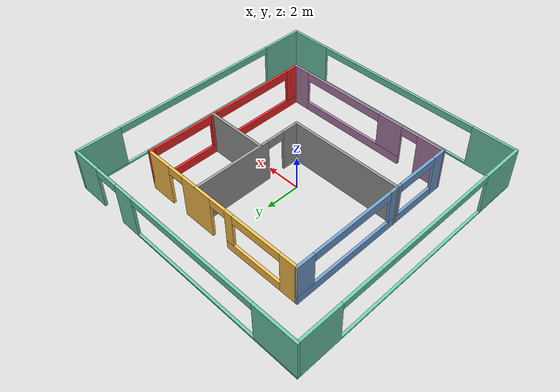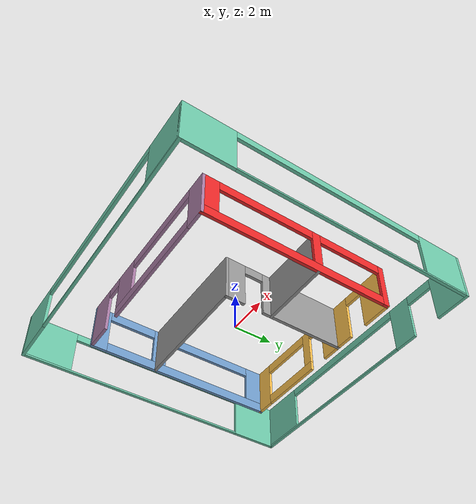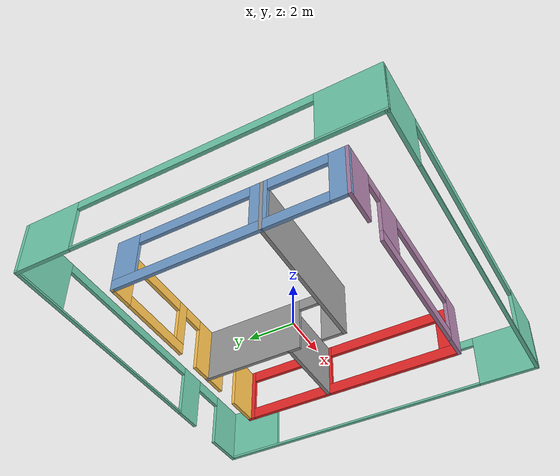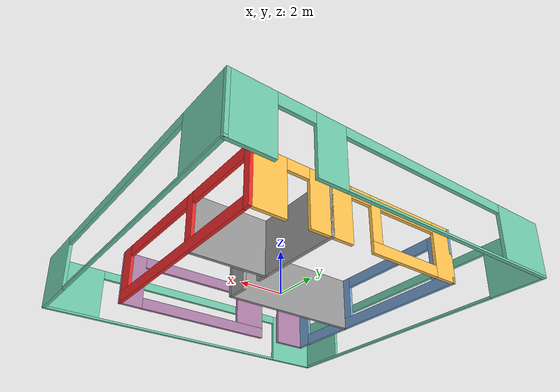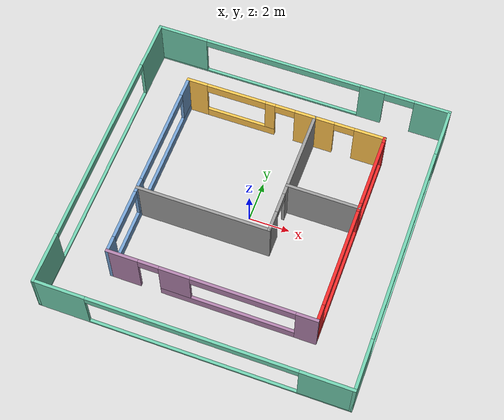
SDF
<!--building/model.sdf-->
<?xml version='1.0'?>
<sdf version='1.6'>
  <model name='building'>
    <pose frame=''>0 0 0 0 -0 0</pose>
    <link name='Wall_11'>
      <pose frame=''>0 5 0 0 -0 0</pose>
      <visual name='Wall_11_Visual_0'>
        <pose frame=''>-4.5375 0 1.25 0 -0 0</pose>
        <geometry>
          <box>
            <size>1.075 0.15 2.5</size>
          </box>
        </geometry>
        <material>
          <script>
            <uri>file://media/materials/scripts/gazebo.material</uri>
            <name>Gazebo/Grey</name>
          </script>
          <ambient>1 0.764706 0.305882 1</ambient>
        </material>
        <meta>
          <layer>0</layer>
        </meta>
      </visual>
      <collision name='Wall_11_Collision_0'>
        <geometry>
          <box>
            <size>1.075 0.15 2.5</size>
          </box>
        </geometry>
        <pose frame=''>-4.5375 0 1.25 0 -0 0</pose>
      </collision>
      <visual name='Wall_11_Visual_1'>
        <pose frame=''>1.5 0 1.25 0 -0 0</pose>
        <geometry>
          <box>
            <size>2 0.15 2.5</size>
          </box>
        </geometry>
        <material>
          <script>
            <uri>file://media/materials/scripts/gazebo.material</uri>
            <name>Gazebo/Grey</name>
          </script>
          <ambient>1 0.764706 0.305882 1</ambient>
        </material>
        <meta>
          <layer>0</layer>
        </meta>
      </visual>
      <collision name='Wall_11_Collision_1'>
        <geometry>
          <box>
            <size>2 0.15 2.5</size>
          </box>
        </geometry>
        <pose frame=''>1.5 0 1.25 0 -0 0</pose>
      </collision>
      <visual name='Wall_11_Visual_2'>
        <pose frame=''>4.2875 0 1.25 0 -0 0</pose>
        <geometry>
          <box>
            <size>1.575 0.15 2.5</size>
          </box>
        </geometry>
        <material>
          <script>
            <uri>file://media/materials/scripts/gazebo.material</uri>
            <name>Gazebo/Grey</name>
          </script>
          <ambient>1 0.764706 0.305882 1</ambient>
        </material>
        <meta>
          <layer>0</layer>
        </meta>
      </visual>
      <collision name='Wall_11_Collision_2'>
        <geometry>
          <box>
            <size>1.575 0.15 2.5</size>
          </box>
        </geometry>
        <pose frame=''>4.2875 0 1.25 0 -0 0</pose>
      </collision>
      <visual name='Wall_11_Visual_3'>
        <pose frame=''>-2.25 0 0.25 0 -0 0</pose>
        <geometry>
          <box>
            <size>3.5 0.15 0.5</size>
          </box>
        </geometry>
        <material>
          <script>
            <uri>file://media/materials/scripts/gazebo.material</uri>
            <name>Gazebo/Grey</name>
          </script>
          <ambient>1 0.764706 0.305882 1</ambient>
        </material>
        <meta>
          <layer>0</layer>
        </meta>
      </visual>
      <collision name='Wall_11_Collision_3'>
        <geometry>
          <box>
            <size>3.5 0.15 0.5</size>
          </box>
        </geometry>
        <pose frame=''>-2.25 0 0.25 0 -0 0</pose>
      </collision>
      <visual name='Wall_11_Visual_4'>
        <pose frame=''>-0.75 0 1.5 0 -0 0</pose>
        <geometry>
          <box>
            <size>0.5 0.15 2</size>
          </box>
        </geometry>
        <material>
          <script>
            <uri>file://media/materials/scripts/gazebo.material</uri>
            <name>Gazebo/Grey</name>
          </script>
          <ambient>1 0.764706 0.305882 1</ambient>
        </material>
        <meta>
          <layer>0</layer>
        </meta>
      </visual>
      <collision name='Wall_11_Collision_4'>
        <geometry>
          <box>
            <size>0.5 0.15 2</size>
          </box>
        </geometry>
        <pose frame=''>-0.75 0 1.5 0 -0 0</pose>
      </collision>
      <visual name='Wall_11_Visual_5'>
        <pose frame=''>-2.5 0 2.25 0 -0 0</pose>
        <geometry>
          <box>
            <size>3 0.15 0.5</size>
          </box>
        </geometry>
        <material>
          <script>
            <uri>file://media/materials/scripts/gazebo.material</uri>
            <name>Gazebo/Grey</name>
          </script>
          <ambient>1 0.764706 0.305882 1</ambient>
        </material>
        <meta>
          <layer>0</layer>
        </meta>
      </visual>
      <collision name='Wall_11_Collision_5'>
        <geometry>
          <box>
            <size>3 0.15 0.5</size>
          </box>
        </geometry>
        <pose frame=''>-2.5 0 2.25 0 -0 0</pose>
      </collision>
      <visual name='Wall_11_Visual_6'>
        <pose frame=''>3 0 2.25 0 -0 0</pose>
        <geometry>
          <box>
            <size>1 0.15 0.5</size>
          </box>
        </geometry>
        <material>
          <script>
            <uri>file://media/materials/scripts/gazebo.material</uri>
            <name>Gazebo/Grey</name>
          </script>
          <ambient>1 0.764706 0.305882 1</ambient>
        </material>
        <meta>
          <layer>0</layer>
        </meta>
      </visual>
      <collision name='Wall_11_Collision_6'>
        <geometry>
          <box>
            <size>1 0.15 0.5</size>
          </box>
        </geometry>
        <pose frame=''>3 0 2.25 0 -0 0</pose>
      </collision>
      <visual name='Wall_11_Visual_7'>
        <pose frame=''>0 0 2.25 0 -0 0</pose>
        <geometry>
          <box>
            <size>1 0.15 0.5</size>
          </box>
        </geometry>
        <material>
          <script>
            <uri>file://media/materials/scripts/gazebo.material</uri>
            <name>Gazebo/Grey</name>
          </script>
          <ambient>1 0.764706 0.305882 1</ambient>
        </material>
        <meta>
          <layer>0</layer>
        </meta>
      </visual>
      <collision name='Wall_11_Collision_7'>
        <geometry>
          <box>
            <size>1 0.15 0.5</size>
          </box>
        </geometry>
        <pose frame=''>0 0 2.25 0 -0 0</pose>
      </collision>
    </link>
    <link name='Wall_12'>
      <pose frame=''>5 0 0 0 -0 -1.5708</pose>
      <visual name='Wall_12_Visual_0'>
        <pose frame=''>-4.9125 0 1.25 0 -0 0</pose>
        <geometry>
          <box>
            <size>0.325 0.15 2.5</size>
          </box>
        </geometry>
        <material>
          <script>
            <uri>file://media/materials/scripts/gazebo.material</uri>
            <name>Gazebo/Grey</name>
          </script>
          <ambient>0.937255 0.160784 0.160784 1</ambient>
        </material>
        <meta>
          <layer>0</layer>
        </meta>
      </visual>
      <collision name='Wall_12_Collision_0'>
        <geometry>
          <box>
            <size>0.325 0.15 2.5</size>
          </box>
        </geometry>
        <pose frame=''>-4.9125 0 1.25 0 -0 0</pose>
      </collision>
      <visual name='Wall_12_Visual_1'>
        <pose frame=''>0.1625 0 0.25 0 -0 0</pose>
        <geometry>
          <box>
            <size>9.825 0.15 0.5</size>
          </box>
        </geometry>
        <material>
          <script>
            <uri>file://media/materials/scripts/gazebo.material</uri>
            <name>Gazebo/Grey</name>
          </script>
          <ambient>0.937255 0.160784 0.160784 1</ambient>
        </material>
        <meta>
          <layer>0</layer>
        </meta>
      </visual>
      <collision name='Wall_12_Collision_1'>
        <geometry>
          <box>
            <size>9.825 0.15 0.5</size>
          </box>
        </geometry>
        <pose frame=''>0.1625 0 0.25 0 -0 0</pose>
      </collision>
      <visual name='Wall_12_Visual_2'>
        <pose frame=''>-1.025 0 1.5 0 -0 0</pose>
        <geometry>
          <box>
            <size>0.45 0.15 2</size>
          </box>
        </geometry>
        <material>
          <script>
            <uri>file://media/materials/scripts/gazebo.material</uri>
            <name>Gazebo/Grey</name>
          </script>
          <ambient>0.937255 0.160784 0.160784 1</ambient>
        </material>
        <meta>
          <layer>0</layer>
        </meta>
      </visual>
      <collision name='Wall_12_Collision_2'>
        <geometry>
          <box>
            <size>0.45 0.15 2</size>
          </box>
        </geometry>
        <pose frame=''>-1.025 0 1.5 0 -0 0</pose>
      </collision>
      <visual name='Wall_12_Visual_3'>
        <pose frame=''>4.6375 0 1.5 0 -0 0</pose>
        <geometry>
          <box>
            <size>0.875 0.15 2</size>
          </box>
        </geometry>
        <material>
          <script>
            <uri>file://media/materials/scripts/gazebo.material</uri>
            <name>Gazebo/Grey</name>
          </script>
          <ambient>0.937255 0.160784 0.160784 1</ambient>
        </material>
        <meta>
          <layer>0</layer>
        </meta>
      </visual>
      <collision name='Wall_12_Collision_3'>
        <geometry>
          <box>
            <size>0.875 0.15 2</size>
          </box>
        </geometry>
        <pose frame=''>4.6375 0 1.5 0 -0 0</pose>
      </collision>
      <visual name='Wall_12_Visual_4'>
        <pose frame=''>-3 0 2.25 0 -0 0</pose>
        <geometry>
          <box>
            <size>3.5 0.15 0.5</size>
          </box>
        </geometry>
        <material>
          <script>
            <uri>file://media/materials/scripts/gazebo.material</uri>
            <name>Gazebo/Grey</name>
          </script>
          <ambient>0.937255 0.160784 0.160784 1</ambient>
        </material>
        <meta>
          <layer>0</layer>
        </meta>
      </visual>
      <collision name='Wall_12_Collision_4'>
        <geometry>
          <box>
            <size>3.5 0.15 0.5</size>
          </box>
        </geometry>
        <pose frame=''>-3 0 2.25 0 -0 0</pose>
      </collision>
      <visual name='Wall_12_Visual_5'>
        <pose frame=''>1.7 0 2.25 0 -0 0</pose>
        <geometry>
          <box>
            <size>5 0.15 0.5</size>
          </box>
        </geometry>
        <material>
          <script>
            <uri>file://media/materials/scripts/gazebo.material</uri>
            <name>Gazebo/Grey</name>
          </script>
          <ambient>0.937255 0.160784 0.160784 1</ambient>
        </material>
        <meta>
          <layer>0</layer>
        </meta>
      </visual>
      <collision name='Wall_12_Collision_5'>
        <geometry>
          <box>
            <size>5 0.15 0.5</size>
          </box>
        </geometry>
        <pose frame=''>1.7 0 2.25 0 -0 0</pose>
      </collision>
    </link>
    <link name='Wall_13'>
      <pose frame=''>0 -5 0 0 -0 3.14159</pose>
      <visual name='Wall_13_Visual_0'>
        <pose frame=''>-4.5375 0 1.25 0 -0 0</pose>
        <geometry>
          <box>
            <size>1.075 0.15 2.5</size>
          </box>
        </geometry>
        <material>
          <script>
            <uri>file://media/materials/scripts/gazebo.material</uri>
            <name>Gazebo/Grey</name>
          </script>
          <ambient>0.678431 0.498039 0.658824 1</ambient>
        </material>
        <meta>
          <layer>0</layer>
        </meta>
      </visual>
      <collision name='Wall_13_Collision_0'>
        <geometry>
          <box>
            <size>1.075 0.15 2.5</size>
          </box>
        </geometry>
        <pose frame=''>-4.5375 0 1.25 0 -0 0</pose>
      </collision>
      <visual name='Wall_13_Visual_1'>
        <pose frame=''>4.2875 0 1.25 0 -0 0</pose>
        <geometry>
          <box>
            <size>1.575 0.15 2.5</size>
          </box>
        </geometry>
        <material>
          <script>
            <uri>file://media/materials/scripts/gazebo.material</uri>
            <name>Gazebo/Grey</name>
          </script>
          <ambient>0.678431 0.498039 0.658824 1</ambient>
        </material>
        <meta>
          <layer>0</layer>
        </meta>
      </visual>
      <collision name='Wall_13_Collision_1'>
        <geometry>
          <box>
            <size>1.575 0.15 2.5</size>
          </box>
        </geometry>
        <pose frame=''>4.2875 0 1.25 0 -0 0</pose>
      </collision>
      <visual name='Wall_13_Visual_2'>
        <pose frame=''>-0.75 0 0.25 0 -0 0</pose>
        <geometry>
          <box>
            <size>6.5 0.15 0.5</size>
          </box>
        </geometry>
        <material>
          <script>
            <uri>file://media/materials/scripts/gazebo.material</uri>
            <name>Gazebo/Grey</name>
          </script>
          <ambient>0.678431 0.498039 0.658824 1</ambient>
        </material>
        <meta>
          <layer>0</layer>
        </meta>
      </visual>
      <collision name='Wall_13_Collision_2'>
        <geometry>
          <box>
            <size>6.5 0.15 0.5</size>
          </box>
        </geometry>
        <pose frame=''>-0.75 0 0.25 0 -0 0</pose>
      </collision>
      <visual name='Wall_13_Visual_3'>
        <pose frame=''>1.75 0 1.5 0 -0 0</pose>
        <geometry>
          <box>
            <size>1.5 0.15 2</size>
          </box>
        </geometry>
        <material>
          <script>
            <uri>file://media/materials/scripts/gazebo.material</uri>
            <name>Gazebo/Grey</name>
          </script>
          <ambient>0.678431 0.498039 0.658824 1</ambient>
        </material>
        <meta>
          <layer>0</layer>
        </meta>
      </visual>
      <collision name='Wall_13_Collision_3'>
        <geometry>
          <box>
            <size>1.5 0.15 2</size>
          </box>
        </geometry>
        <pose frame=''>1.75 0 1.5 0 -0 0</pose>
      </collision>
      <visual name='Wall_13_Visual_4'>
        <pose frame=''>-1.5 0 2.25 0 -0 0</pose>
        <geometry>
          <box>
            <size>5 0.15 0.5</size>
          </box>
        </geometry>
        <material>
          <script>
            <uri>file://media/materials/scripts/gazebo.material</uri>
            <name>Gazebo/Grey</name>
          </script>
          <ambient>0.678431 0.498039 0.658824 1</ambient>
        </material>
        <meta>
          <layer>0</layer>
        </meta>
      </visual>
      <collision name='Wall_13_Collision_4'>
        <geometry>
          <box>
            <size>5 0.15 0.5</size>
          </box>
        </geometry>
        <pose frame=''>-1.5 0 2.25 0 -0 0</pose>
      </collision>
      <visual name='Wall_13_Visual_5'>
        <pose frame=''>3 0 2.25 0 -0 0</pose>
        <geometry>
          <box>
            <size>1 0.15 0.5</size>
          </box>
        </geometry>
        <material>
          <script>
            <uri>file://media/materials/scripts/gazebo.material</uri>
            <name>Gazebo/Grey</name>
          </script>
          <ambient>0.678431 0.498039 0.658824 1</ambient>
        </material>
        <meta>
          <layer>0</layer>
        </meta>
      </visual>
      <collision name='Wall_13_Collision_5'>
        <geometry>
          <box>
            <size>1 0.15 0.5</size>
          </box>
        </geometry>
        <pose frame=''>3 0 2.25 0 -0 0</pose>
      </collision>
    </link>
    <link name='Wall_14'>
      <pose frame=''>-5 0 0 0 -0 1.5708</pose>
      <visual name='Wall_14_Visual_0'>
        <pose frame=''>-4.6625 0 1.25 0 -0 0</pose>
        <geometry>
          <box>
            <size>0.825 0.15 2.5</size>
          </box>
        </geometry>
        <material>
          <script>
            <uri>file://media/materials/scripts/gazebo.material</uri>
            <name>Gazebo/Grey</name>
          </script>
          <ambient>0.447059 0.623529 0.811765 1</ambient>
        </material>
        <meta>
          <layer>0</layer>
        </meta>
      </visual>
      <collision name='Wall_14_Collision_0'>
        <geometry>
          <box>
            <size>0.825 0.15 2.5</size>
          </box>
        </geometry>
        <pose frame=''>-4.6625 0 1.25 0 -0 0</pose>
      </collision>
      <visual name='Wall_14_Visual_1'>
        <pose frame=''>0.4125 0 0.25 0 -0 0</pose>
        <geometry>
          <box>
            <size>9.325 0.15 0.5</size>
          </box>
        </geometry>
        <material>
          <script>
            <uri>file://media/materials/scripts/gazebo.material</uri>
            <name>Gazebo/Grey</name>
          </script>
          <ambient>0.447059 0.623529 0.811765 1</ambient>
        </material>
        <meta>
          <layer>0</layer>
        </meta>
      </visual>
      <collision name='Wall_14_Collision_1'>
        <geometry>
          <box>
            <size>9.325 0.15 0.5</size>
          </box>
        </geometry>
        <pose frame=''>0.4125 0 0.25 0 -0 0</pose>
      </collision>
      <visual name='Wall_14_Visual_2'>
        <pose frame=''>-1.375 0 1.5 0 -0 0</pose>
        <geometry>
          <box>
            <size>0.75 0.15 2</size>
          </box>
        </geometry>
        <material>
          <script>
            <uri>file://media/materials/scripts/gazebo.material</uri>
            <name>Gazebo/Grey</name>
          </script>
          <ambient>0.447059 0.623529 0.811765 1</ambient>
        </material>
        <meta>
          <layer>0</layer>
        </meta>
      </visual>
      <collision name='Wall_14_Collision_2'>
        <geometry>
          <box>
            <size>0.75 0.15 2</size>
          </box>
        </geometry>
        <pose frame=''>-1.375 0 1.5 0 -0 0</pose>
      </collision>
      <visual name='Wall_14_Visual_3'>
        <pose frame=''>4.5375 0 1.5 0 -0 0</pose>
        <geometry>
          <box>
            <size>1.075 0.15 2</size>
          </box>
        </geometry>
        <material>
          <script>
            <uri>file://media/materials/scripts/gazebo.material</uri>
            <name>Gazebo/Grey</name>
          </script>
          <ambient>0.447059 0.623529 0.811765 1</ambient>
        </material>
        <meta>
          <layer>0</layer>
        </meta>
      </visual>
      <collision name='Wall_14_Collision_3'>
        <geometry>
          <box>
            <size>1.075 0.15 2</size>
          </box>
        </geometry>
        <pose frame=''>4.5375 0 1.5 0 -0 0</pose>
      </collision>
      <visual name='Wall_14_Visual_4'>
        <pose frame=''>-3 0 2.25 0 -0 0</pose>
        <geometry>
          <box>
            <size>2.5 0.15 0.5</size>
          </box>
        </geometry>
        <material>
          <script>
            <uri>file://media/materials/scripts/gazebo.material</uri>
            <name>Gazebo/Grey</name>
          </script>
          <ambient>0.447059 0.623529 0.811765 1</ambient>
        </material>
        <meta>
          <layer>0</layer>
        </meta>
      </visual>
      <collision name='Wall_14_Collision_4'>
        <geometry>
          <box>
            <size>2.5 0.15 0.5</size>
          </box>
        </geometry>
        <pose frame=''>-3 0 2.25 0 -0 0</pose>
      </collision>
      <visual name='Wall_14_Visual_5'>
        <pose frame=''>1.5 0 2.25 0 -0 0</pose>
        <geometry>
          <box>
            <size>5 0.15 0.5</size>
          </box>
        </geometry>
        <material>
          <script>
            <uri>file://media/materials/scripts/gazebo.material</uri>
            <name>Gazebo/Grey</name>
          </script>
          <ambient>0.447059 0.623529 0.811765 1</ambient>
        </material>
        <meta>
          <layer>0</layer>
        </meta>
      </visual>
      <collision name='Wall_14_Collision_5'>
        <geometry>
          <box>
            <size>5 0.15 0.5</size>
          </box>
        </geometry>
        <pose frame=''>1.5 0 2.25 0 -0 0</pose>
      </collision>
    </link>
    <link name='Wall_16'>
      <pose frame=''>1.5 1.75 0 0 -0 -1.5708</pose>
      <visual name='Wall_16_Visual_0'>
        <pose frame=''>-1.0375 0 1.25 0 -0 0</pose>
        <geometry>
          <box>
            <size>4.575 0.15 2.5</size>
          </box>
        </geometry>
        <material>
          <script>
            <uri>file://media/materials/scripts/gazebo.material</uri>
            <name>Gazebo/Grey</name>
          </script>
          <ambient>1 1 1 1</ambient>
        </material>
        <meta>
          <layer>0</layer>
        </meta>
      </visual>
      <collision name='Wall_16_Collision_0'>
        <geometry>
          <box>
            <size>4.575 0.15 2.5</size>
          </box>
        </geometry>
        <pose frame=''>-1.0375 0 1.25 0 -0 0</pose>
      </collision>
      <visual name='Wall_16_Visual_1'>
        <pose frame=''>2.7875 0 1.25 0 -0 0</pose>
        <geometry>
          <box>
            <size>1.075 0.15 2.5</size>
          </box>
        </geometry>
        <material>
          <script>
            <uri>file://media/materials/scripts/gazebo.material</uri>
            <name>Gazebo/Grey</name>
          </script>
          <ambient>1 1 1 1</ambient>
        </material>
        <meta>
          <layer>0</layer>
        </meta>
      </visual>
      <collision name='Wall_16_Collision_1'>
        <geometry>
          <box>
            <size>1.075 0.15 2.5</size>
          </box>
        </geometry>
        <pose frame=''>2.7875 0 1.25 0 -0 0</pose>
      </collision>
      <visual name='Wall_16_Visual_2'>
        <pose frame=''>1.75 0 2.25 0 -0 0</pose>
        <geometry>
          <box>
            <size>1 0.15 0.5</size>
          </box>
        </geometry>
        <material>
          <script>
            <uri>file://media/materials/scripts/gazebo.material</uri>
            <name>Gazebo/Grey</name>
          </script>
          <ambient>1 1 1 1</ambient>
        </material>
        <meta>
          <layer>0</layer>
        </meta>
      </visual>
      <collision name='Wall_16_Collision_2'>
        <geometry>
          <box>
            <size>1 0.15 0.5</size>
          </box>
        </geometry>
        <pose frame=''>1.75 0 2.25 0 -0 0</pose>
      </collision>
    </link>
    <link name='Wall_17'>
      <collision name='Wall_17_Collision'>
        <geometry>
          <box>
            <size>6.65 0.15 2.5</size>
          </box>
        </geometry>
        <pose frame=''>0 0 1.25 0 -0 0</pose>
      </collision>
      <visual name='Wall_17_Visual'>
        <pose frame=''>0 0 1.25 0 -0 0</pose>
        <geometry>
          <box>
            <size>6.65 0.15 2.5</size>
          </box>
        </geometry>
        <material>
          <script>
            <uri>file://media/materials/scripts/gazebo.material</uri>
            <name>Gazebo/Grey</name>
          </script>
          <ambient>1 1 1 1</ambient>
        </material>
        <meta>
          <layer>0</layer>
        </meta>
      </visual>
      <pose frame=''>-1.75 -1.5 0 0 -0 3.14159</pose>
    </link>
    <link name='Wall_19'>
      <collision name='Wall_19_Collision'>
        <geometry>
          <box>
            <size>3.65 0.15 2.5</size>
          </box>
        </geometry>
        <pose frame=''>0 0 1.25 0 -0 0</pose>
      </collision>
      <visual name='Wall_19_Visual'>
        <pose frame=''>0 0 1.25 0 -0 0</pose>
        <geometry>
          <box>
            <size>3.65 0.15 2.5</size>
          </box>
        </geometry>
        <material>
          <script>
            <uri>file://media/materials/scripts/gazebo.material</uri>
            <name>Gazebo/Grey</name>
          </script>
          <ambient>1 1 1 1</ambient>
        </material>
        <meta>
          <layer>0</layer>
        </meta>
      </visual>
      <pose frame=''>3.25 1 0 0 -0 0</pose>
    </link>
    <link name='Wall_21'>
      <pose frame=''>-7.5 0 0 0 -0 -1.5708</pose>
      <visual name='Wall_21_Visual_0'>
        <pose frame=''>-6.2875 0 1.25 0 -0 0</pose>
        <geometry>
          <box>
            <size>2.575 0.15 2.5</size>
          </box>
        </geometry>
        <material>
          <script>
            <uri>file://media/materials/scripts/gazebo.material</uri>
            <name>Gazebo/Grey</name>
          </script>
          <ambient>0.435294 0.796078 0.67451 1</ambient>
        </material>
        <meta>
          <layer>0</layer>
        </meta>
      </visual>
      <collision name='Wall_21_Collision_0'>
        <geometry>
          <box>
            <size>2.575 0.15 2.5</size>
          </box>
        </geometry>
        <pose frame=''>-6.2875 0 1.25 0 -0 0</pose>
      </collision>
      <visual name='Wall_21_Visual_1'>
        <pose frame=''>1.2875 0 0.05 0 -0 0</pose>
        <geometry>
          <box>
            <size>12.575 0.15 0.1</size>
          </box>
        </geometry>
        <material>
          <script>
            <uri>file://media/materials/scripts/gazebo.material</uri>
            <name>Gazebo/Grey</name>
          </script>
          <ambient>0.435294 0.796078 0.67451 1</ambient>
        </material>
        <meta>
          <layer>0</layer>
        </meta>
      </visual>
      <collision name='Wall_21_Collision_1'>
        <geometry>
          <box>
            <size>12.575 0.15 0.1</size>
          </box>
        </geometry>
        <pose frame=''>1.2875 0 0.05 0 -0 0</pose>
      </collision>
      <visual name='Wall_21_Visual_2'>
        <pose frame=''>6.2875 0 1.3 0 -0 0</pose>
        <geometry>
          <box>
            <size>2.575 0.15 2.4</size>
          </box>
        </geometry>
        <material>
          <script>
            <uri>file://media/materials/scripts/gazebo.material</uri>
            <name>Gazebo/Grey</name>
          </script>
          <ambient>0.435294 0.796078 0.67451 1</ambient>
        </material>
        <meta>
          <layer>0</layer>
        </meta>
      </visual>
      <collision name='Wall_21_Collision_2'>
        <geometry>
          <box>
            <size>2.575 0.15 2.4</size>
          </box>
        </geometry>
        <pose frame=''>6.2875 0 1.3 0 -0 0</pose>
      </collision>
      <visual name='Wall_21_Visual_3'>
        <pose frame=''>0 0 2.3 0 -0 0</pose>
        <geometry>
          <box>
            <size>10 0.15 0.4</size>
          </box>
        </geometry>
        <material>
          <script>
            <uri>file://media/materials/scripts/gazebo.material</uri>
            <name>Gazebo/Grey</name>
          </script>
          <ambient>0.435294 0.796078 0.67451 1</ambient>
        </material>
        <meta>
          <layer>0</layer>
        </meta>
      </visual>
      <collision name='Wall_21_Collision_3'>
        <geometry>
          <box>
            <size>10 0.15 0.4</size>
          </box>
        </geometry>
        <pose frame=''>0 0 2.3 0 -0 0</pose>
      </collision>
    </link>
    <link name='Wall_22'>
      <pose frame=''>0 -7.5 0 0 -0 0</pose>
      <visual name='Wall_22_Visual_0'>
        <pose frame=''>-6.2875 0 1.25 0 -0 0</pose>
        <geometry>
          <box>
            <size>2.575 0.15 2.5</size>
          </box>
        </geometry>
        <material>
          <script>
            <uri>file://media/materials/scripts/gazebo.material</uri>
            <name>Gazebo/Grey</name>
          </script>
          <ambient>0.435294 0.796078 0.67451 1</ambient>
        </material>
        <meta>
          <layer>0</layer>
        </meta>
      </visual>
      <collision name='Wall_22_Collision_0'>
        <geometry>
          <box>
            <size>2.575 0.15 2.5</size>
          </box>
        </geometry>
        <pose frame=''>-6.2875 0 1.25 0 -0 0</pose>
      </collision>
      <visual name='Wall_22_Visual_1'>
        <pose frame=''>1.2875 0 0.05 0 -0 0</pose>
        <geometry>
          <box>
            <size>12.575 0.15 0.1</size>
          </box>
        </geometry>
        <material>
          <script>
            <uri>file://media/materials/scripts/gazebo.material</uri>
            <name>Gazebo/Grey</name>
          </script>
          <ambient>0.435294 0.796078 0.67451 1</ambient>
        </material>
        <meta>
          <layer>0</layer>
        </meta>
      </visual>
      <collision name='Wall_22_Collision_1'>
        <geometry>
          <box>
            <size>12.575 0.15 0.1</size>
          </box>
        </geometry>
        <pose frame=''>1.2875 0 0.05 0 -0 0</pose>
      </collision>
      <visual name='Wall_22_Visual_2'>
        <pose frame=''>6.2875 0 1.3 0 -0 0</pose>
        <geometry>
          <box>
            <size>2.575 0.15 2.4</size>
          </box>
        </geometry>
        <material>
          <script>
            <uri>file://media/materials/scripts/gazebo.material</uri>
            <name>Gazebo/Grey</name>
          </script>
          <ambient>0.435294 0.796078 0.67451 1</ambient>
        </material>
        <meta>
          <layer>0</layer>
        </meta>
      </visual>
      <collision name='Wall_22_Collision_2'>
        <geometry>
          <box>
            <size>2.575 0.15 2.4</size>
          </box>
        </geometry>
        <pose frame=''>6.2875 0 1.3 0 -0 0</pose>
      </collision>
      <visual name='Wall_22_Visual_3'>
        <pose frame=''>0 0 2.3 0 -0 0</pose>
        <geometry>
          <box>
            <size>10 0.15 0.4</size>
          </box>
        </geometry>
        <material>
          <script>
            <uri>file://media/materials/scripts/gazebo.material</uri>
            <name>Gazebo/Grey</name>
          </script>
          <ambient>0.435294 0.796078 0.67451 1</ambient>
        </material>
        <meta>
          <layer>0</layer>
        </meta>
      </visual>
      <collision name='Wall_22_Collision_3'>
        <geometry>
          <box>
            <size>10 0.15 0.4</size>
          </box>
        </geometry>
        <pose frame=''>0 0 2.3 0 -0 0</pose>
      </collision>
    </link>
    <link name='Wall_23'>
      <pose frame=''>7.5 0 0 0 -0 1.5708</pose>
      <visual name='Wall_23_Visual_0'>
        <pose frame=''>-6.2875 0 1.25 0 -0 0</pose>
        <geometry>
          <box>
            <size>2.575 0.15 2.5</size>
          </box>
        </geometry>
        <material>
          <script>
            <uri>file://media/materials/scripts/gazebo.material</uri>
            <name>Gazebo/Grey</name>
          </script>
          <ambient>0.435294 0.796078 0.67451 1</ambient>
        </material>
        <meta>
          <layer>0</layer>
        </meta>
      </visual>
      <collision name='Wall_23_Collision_0'>
        <geometry>
          <box>
            <size>2.575 0.15 2.5</size>
          </box>
        </geometry>
        <pose frame=''>-6.2875 0 1.25 0 -0 0</pose>
      </collision>
      <visual name='Wall_23_Visual_1'>
        <pose frame=''>1.2875 0 0.05 0 -0 0</pose>
        <geometry>
          <box>
            <size>12.575 0.15 0.1</size>
          </box>
        </geometry>
        <material>
          <script>
            <uri>file://media/materials/scripts/gazebo.material</uri>
            <name>Gazebo/Grey</name>
          </script>
          <ambient>0.435294 0.796078 0.67451 1</ambient>
        </material>
        <meta>
          <layer>0</layer>
        </meta>
      </visual>
      <collision name='Wall_23_Collision_1'>
        <geometry>
          <box>
            <size>12.575 0.15 0.1</size>
          </box>
        </geometry>
        <pose frame=''>1.2875 0 0.05 0 -0 0</pose>
      </collision>
      <visual name='Wall_23_Visual_2'>
        <pose frame=''>6.2875 0 1.3 0 -0 0</pose>
        <geometry>
          <box>
            <size>2.575 0.15 2.4</size>
          </box>
        </geometry>
        <material>
          <script>
            <uri>file://media/materials/scripts/gazebo.material</uri>
            <name>Gazebo/Grey</name>
          </script>
          <ambient>0.435294 0.796078 0.67451 1</ambient>
        </material>
        <meta>
          <layer>0</layer>
        </meta>
      </visual>
      <collision name='Wall_23_Collision_2'>
        <geometry>
          <box>
            <size>2.575 0.15 2.4</size>
          </box>
        </geometry>
        <pose frame=''>6.2875 0 1.3 0 -0 0</pose>
      </collision>
      <visual name='Wall_23_Visual_3'>
        <pose frame=''>0 0 2.3 0 -0 0</pose>
        <geometry>
          <box>
            <size>10 0.15 0.4</size>
          </box>
        </geometry>
        <material>
          <script>
            <uri>file://media/materials/scripts/gazebo.material</uri>
            <name>Gazebo/Grey</name>
          </script>
          <ambient>0.435294 0.796078 0.67451 1</ambient>
        </material>
        <meta>
          <layer>0</layer>
        </meta>
      </visual>
      <collision name='Wall_23_Collision_3'>
        <geometry>
          <box>
            <size>10 0.15 0.4</size>
          </box>
        </geometry>
        <pose frame=''>0 0 2.3 0 -0 0</pose>
      </collision>
    </link>
    <link name='Wall_24'>
      <pose frame=''>0 7.5 0 0 -0 3.14159</pose>
      <visual name='Wall_24_Visual_0'>
        <pose frame=''>-6.6625 0 1.25 0 -0 0</pose>
        <geometry>
          <box>
            <size>1.825 0.15 2.5</size>
          </box>
        </geometry>
        <material>
          <script>
            <uri>file://media/materials/scripts/gazebo.material</uri>
            <name>Gazebo/Grey</name>
          </script>
          <ambient>0.435294 0.796078 0.67451 1</ambient>
        </material>
        <meta>
          <layer>0</layer>
        </meta>
      </visual>
      <collision name='Wall_24_Collision_0'>
        <geometry>
          <box>
            <size>1.825 0.15 2.5</size>
          </box>
        </geometry>
        <pose frame=''>-6.6625 0 1.25 0 -0 0</pose>
      </collision>
      <visual name='Wall_24_Visual_1'>
        <pose frame=''>-3.625 0 1.25 0 -0 0</pose>
        <geometry>
          <box>
            <size>1.25 0.15 2.5</size>
          </box>
        </geometry>
        <material>
          <script>
            <uri>file://media/materials/scripts/gazebo.material</uri>
            <name>Gazebo/Grey</name>
          </script>
          <ambient>0.435294 0.796078 0.67451 1</ambient>
        </material>
        <meta>
          <layer>0</layer>
        </meta>
      </visual>
      <collision name='Wall_24_Collision_1'>
        <geometry>
          <box>
            <size>1.25 0.15 2.5</size>
          </box>
        </geometry>
        <pose frame=''>-3.625 0 1.25 0 -0 0</pose>
      </collision>
      <visual name='Wall_24_Visual_2'>
        <pose frame=''>2.2875 0 0.05 0 -0 0</pose>
        <geometry>
          <box>
            <size>10.575 0.15 0.1</size>
          </box>
        </geometry>
        <material>
          <script>
            <uri>file://media/materials/scripts/gazebo.material</uri>
            <name>Gazebo/Grey</name>
          </script>
          <ambient>0.435294 0.796078 0.67451 1</ambient>
        </material>
        <meta>
          <layer>0</layer>
        </meta>
      </visual>
      <collision name='Wall_24_Collision_2'>
        <geometry>
          <box>
            <size>10.575 0.15 0.1</size>
          </box>
        </geometry>
        <pose frame=''>2.2875 0 0.05 0 -0 0</pose>
      </collision>
      <visual name='Wall_24_Visual_3'>
        <pose frame=''>6.2875 0 1.3 0 -0 0</pose>
        <geometry>
          <box>
            <size>2.575 0.15 2.4</size>
          </box>
        </geometry>
        <material>
          <script>
            <uri>file://media/materials/scripts/gazebo.material</uri>
            <name>Gazebo/Grey</name>
          </script>
          <ambient>0.435294 0.796078 0.67451 1</ambient>
        </material>
        <meta>
          <layer>0</layer>
        </meta>
      </visual>
      <collision name='Wall_24_Collision_3'>
        <geometry>
          <box>
            <size>2.575 0.15 2.4</size>
          </box>
        </geometry>
        <pose frame=''>6.2875 0 1.3 0 -0 0</pose>
      </collision>
      <visual name='Wall_24_Visual_4'>
        <pose frame=''>-5 0 2.25 0 -0 0</pose>
        <geometry>
          <box>
            <size>1.5 0.15 0.5</size>
          </box>
        </geometry>
        <material>
          <script>
            <uri>file://media/materials/scripts/gazebo.material</uri>
            <name>Gazebo/Grey</name>
          </script>
          <ambient>0.435294 0.796078 0.67451 1</ambient>
        </material>
        <meta>
          <layer>0</layer>
        </meta>
      </visual>
      <collision name='Wall_24_Collision_4'>
        <geometry>
          <box>
            <size>1.5 0.15 0.5</size>
          </box>
        </geometry>
        <pose frame=''>-5 0 2.25 0 -0 0</pose>
      </collision>
      <visual name='Wall_24_Visual_5'>
        <pose frame=''>1 0 2.3 0 -0 0</pose>
        <geometry>
          <box>
            <size>8 0.15 0.4</size>
          </box>
        </geometry>
        <material>
          <script>
            <uri>file://media/materials/scripts/gazebo.material</uri>
            <name>Gazebo/Grey</name>
          </script>
          <ambient>0.435294 0.796078 0.67451 1</ambient>
        </material>
        <meta>
          <layer>0</layer>
        </meta>
      </visual>
      <collision name='Wall_24_Collision_5'>
        <geometry>
          <box>
            <size>8 0.15 0.4</size>
          </box>
        </geometry>
        <pose frame=''>1 0 2.3 0 -0 0</pose>
      </collision>
    </link>
    <static>1</static>
  </model>
</sdf>
